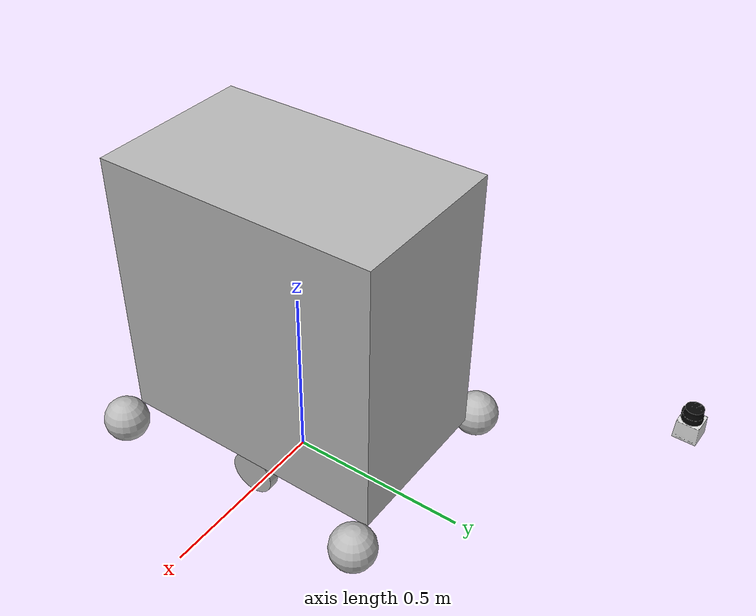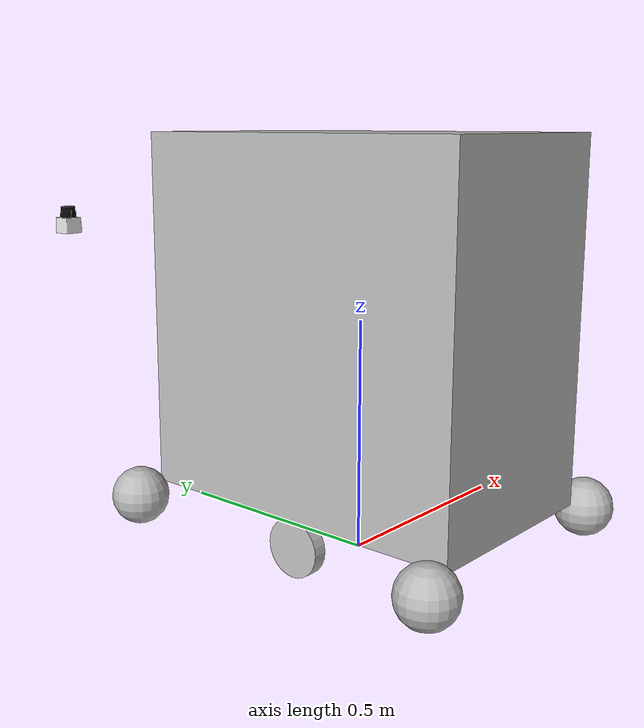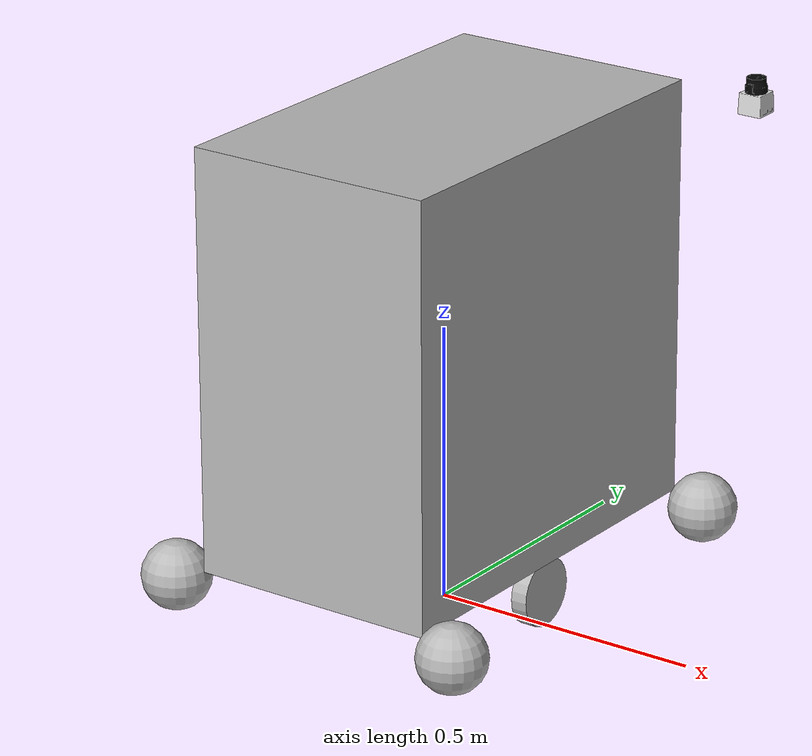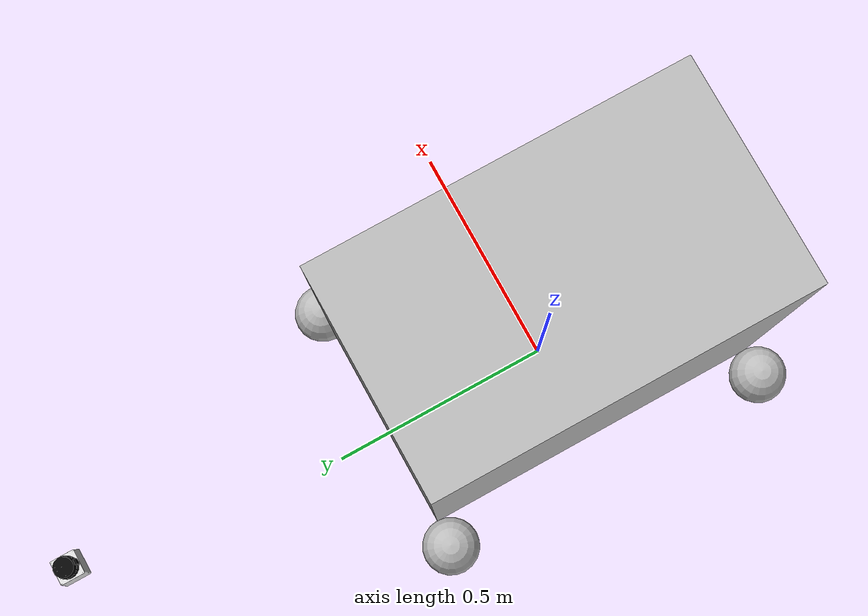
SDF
<?xml version = "1.0"?>
<sdf version='1.4'>

	<model name="Astro">

		<static>false</static>

		<link name="base_link">

		<!--Bottom bed of cart-->

			<pose> 0 0 .505 0 0 0 </pose>

			<collision name="collision">
				<geometry>
					<box>
						<size>.4572 .762 .762</size>
					</box>
				</geometry>
			</collision>

			<visual name="visual">
				<geometry>
					<box>
          	<size>.4572 .762 .762</size>
					</box>
        </geometry>
			</visual>

			<collision name="caster_collision_1">
				<pose> -.2886 -.381 -.4 0 0 0</pose>
				<geometry>
					<sphere>
						<radius>0.06191</radius>
					</sphere>
				</geometry>
				<surface>
              		<friction>
                		<ode>
                  			<mu>0</mu>
                  			<mu2>0</mu2>
                  			<slip1>1.0</slip1>
                  			<slip2>1.0</slip2>
                		</ode>
              		</friction>
            	</surface>
			</collision>

			<visual name="caster_visual_1">
				<pose>-.2886 -.381 -.4 0 0 0</pose>
				<geometry>
                    <sphere>
                        <radius>0.06191</radius>
                	</sphere>
				</geometry>
			</visual>

			<collision name="caster_collision_2">
                <pose> .2886 .381 -.4 0 0 0 </pose>
								<geometry>
                    <sphere>
                        <radius>0.06191</radius>
                		</sphere>
								</geometry>
								<surface>
                    <friction>
                        <ode>
                            <mu>0</mu>
                            <mu2>0</mu2>
                            <slip1>1.0</slip1>
                            <slip2>1.0</slip2>
                        </ode>
                    </friction>
                </surface>
            </collision>

			<visual name="caster_visual_2">
                <pose>.2886 .381 -.4 0 0 0</pose>
				<geometry>
                    <sphere>
                        <radius>0.06191</radius>
                	</sphere>
				</geometry>
            </visual>

<collision name="caster_collision_3">
                <pose>-.2886 .381 -.4 0 0 0</pose>
				<geometry>
                    <sphere>
                        <radius>0.06191</radius>
                	</sphere>
				</geometry>
				<surface>
                    <friction>
                        <ode>
                            <mu>0</mu>
                            <mu2>0</mu2>
                            <slip1>1.0</slip1>
                            <slip2>1.0</slip2>
                        </ode>
                    </friction>
                </surface>
            </collision>

			<visual name="caster_visual_3">
                <pose>-.2886 .381 -.4 0 0 0</pose>
				<geometry>
                    <sphere>
                        <radius>0.06191</radius>
                	</sphere>
				</geometry>
            </visual>

			<collision name="caster_collision_4">
      	<pose>.2886 -.381 -.4 0 0 0</pose>
					<geometry>
                    <sphere>
                        <radius>0.06191</radius>
                	</sphere>
					</geometry>
					<surface>
                <friction>
                        <ode>
                            <mu>0</mu>
                            <mu2>0</mu2>
                            <slip1>1.0</slip1>
                            <slip2>1.0</slip2>
                        </ode>
                    </friction>
                </surface>
      </collision>

			<visual name="caster_visual_4">
                <pose>.2886 -.381 -.4 0 0 0</pose>
				<geometry>
                    <sphere>
                        <radius>0.06191</radius>
                	</sphere>
				</geometry>
       </visual>

		</link>

		<link name="left_wheel">

			<pose> -.2 0 .06191 0 1.57 0 </pose>

			<collision name="collision">
                <geometry>
                    <cylinder>
                        <radius>0.06191</radius>
                        <length>0.03</length>
                    </cylinder>
                </geometry>
            </collision>

			<visual name="visual">
                <geometry>
                    <cylinder>
                        <radius>0.06191</radius>
                        <length>0.03</length>
                    </cylinder>
                </geometry>
            </visual>
		</link>

		<link name="right_wheel">

            <pose> .2 0 .06191 0 1.57 0 </pose>

            <collision name="collision">
                <geometry>
                    <cylinder>
                        <radius>0.06191</radius>
                        <length>0.03</length>
                    </cylinder>
                </geometry>
            </collision>

            <visual name="visual">
                <geometry>
                    <cylinder>
                        <radius>0.06191</radius>
                        <length>0.03</length>
                    </cylinder>
                </geometry>
            </visual>
    </link>

		<joint type="revolute" name="left_wheel_hinge">
			<pose>0 0 0 0 0 0 </pose>
			<child>left_wheel</child>
			<parent>base_link</parent>
			<axis>
				<xyz> 1 0 0 </xyz>
			</axis>
		</joint>

		<joint type="revolute" name="right_wheel_hinge">
            <pose>0 0 0 0 0 0 </pose>
            <child>right_wheel</child>
            <parent>base_link</parent>
            <axis>
                <xyz> 1 0 0 </xyz>
            </axis>
        </joint>

    <joint name="hokuyo_joint" type="fixed">
      <child>hokuyo_link</child>
      <parent>base_link</parent>
    </joint>

	<link name="hokuyo_link">
		<pose>0 1 .65 0 0 1.57</pose>
		<inertial>
			<mass>0.1</mass>
		</inertial>

		<visual name="visual">
		<geometry>
        	  <mesh>
            	<uri>model://hokuyo/meshes/hokuyo.dae</uri>
          	</mesh>
        	</geometry>
     	 </visual>

	<sensor name="head_hokuyo_sensor" type="ray">
        <pose>0 0 0 0 0 0</pose>
        <ray>
          <scan>
            <horizontal>
              <samples>640</samples>
              <resolution>1</resolution>
              <min_angle>-3.14159</min_angle>
              <max_angle>3.14159</max_angle>
            </horizontal>
          </scan>
          <range>
            <min>0.08</min>
            <max>10</max>
            <resolution>0.01</resolution>
          </range>
        </ray>

        <plugin name="laser" filename="libRayPlugin.so" />
    		<always_on>1</always_on>
        	<update_rate>30</update_rate>
			<visualize>true</visualize>

		<plugin name="gazebo_ros_head_hokuyo_controller" filename="libgazebo_ros_laser.so">
			<topicName>scan</topicName>
			<frameName>yellow_robot/hokuyo_link</frameName>
		</plugin>
	</sensor>

    </link>

	<plugin name="differential_drive_controller" filename="libgazebo_ros_diff_drive.so">

		<legacyMode>false</legacyMode>
		<tf_prefix></tf_prefix>
		<robotNamespace></robotNamespace>
		<alwaysOn>true</alwaysOn>
		<updateRate>30</updateRate>
		<leftJoint>left_wheel_hinge</leftJoint>
		<rightJoint>right_wheel_hinge</rightJoint>
		<wheelSeparation>2</wheelSeparation>
		<wheelDiameter>1</wheelDiameter>
		<wheelTorque>5</wheelTorque>
		<commandTopic>cmd_vel</commandTopic>
		<odometryTopic>odom</odometryTopic>
		<odometryFrame>odom</odometryFrame>
		<robotBaseFrame>base_link</robotBaseFrame>
	</plugin>

	</model>
</sdf>
